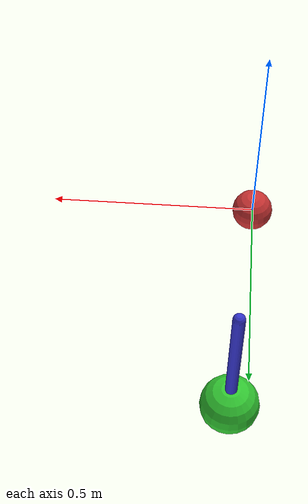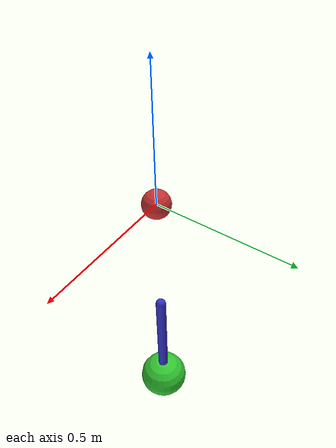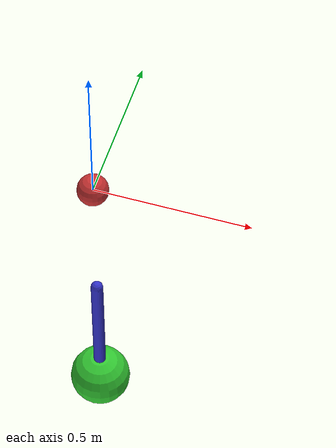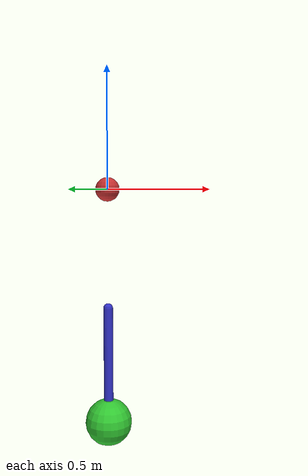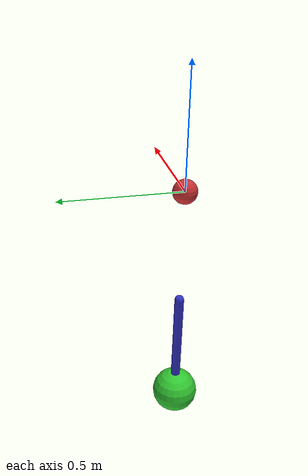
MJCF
<mujoco model="pendulum">
  <option timestep="0.01" gravity="0 0 -9.81"/>

  <worldbody>
    <!-- Fixed point for pendulum -->
    <body name="origin" pos="0 0 0">
      <geom name="origin_geom" type="sphere" size="0.05" rgba="0.8 0.2 0.2 1"/>
      <!-- Joint connecting to pendulum -->
      <joint name="pin" type="hinge" axis="0 1 0" pos="0 0 0"/>

      <!-- Pendulum rod and bob -->
      <body name="pendulum" pos="0 0 -0.5">
        <geom name="rod" type="capsule" fromto="0 0 0 0 0 -0.5" size="0.02" rgba="0.2 0.2 0.8 1"/>
        <geom name="bob" type="sphere" pos="0 0 -0.5" size="0.1" rgba="0.2 0.8 0.2 1"/>
      </body>
    </body>
  </worldbody>

  <!-- Initial configuration -->
  <keyframe>
    <key name="init" qpos="1.57" />  <!-- Start at 90 degrees -->
  </keyframe>
</mujoco>
